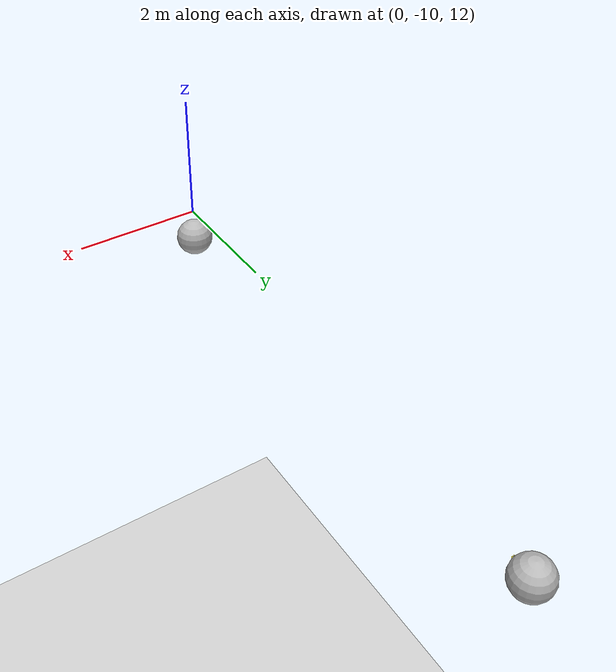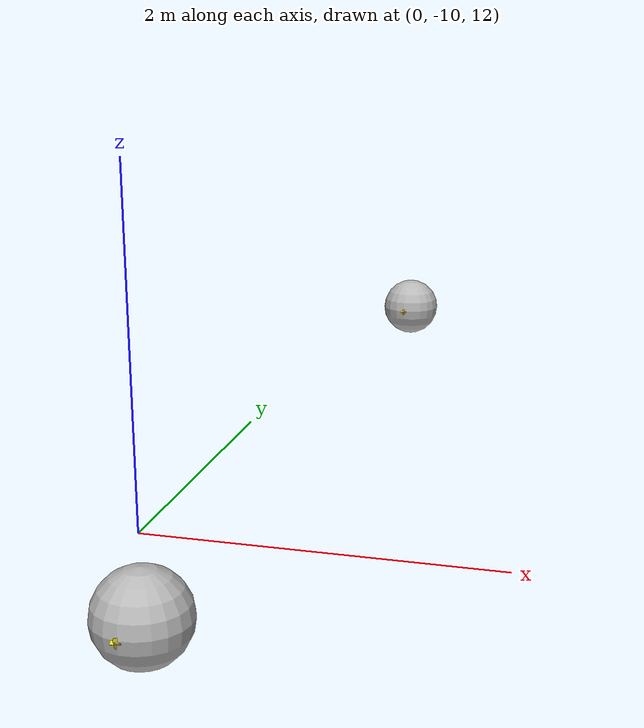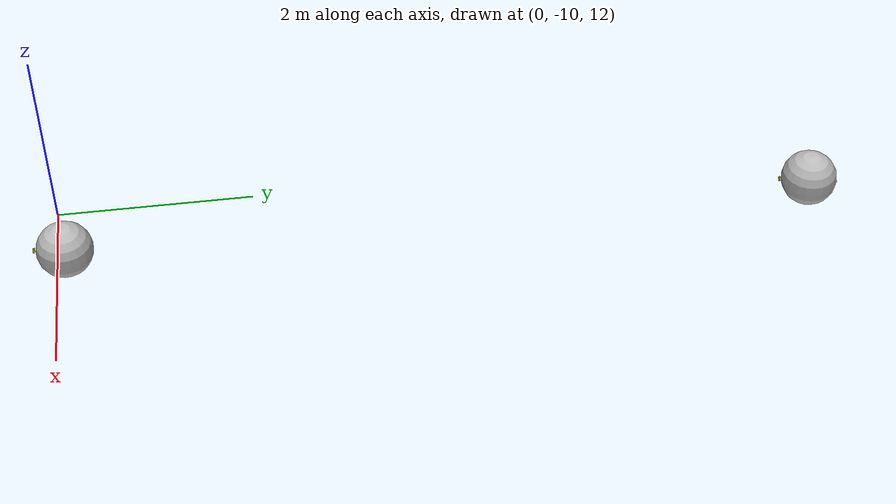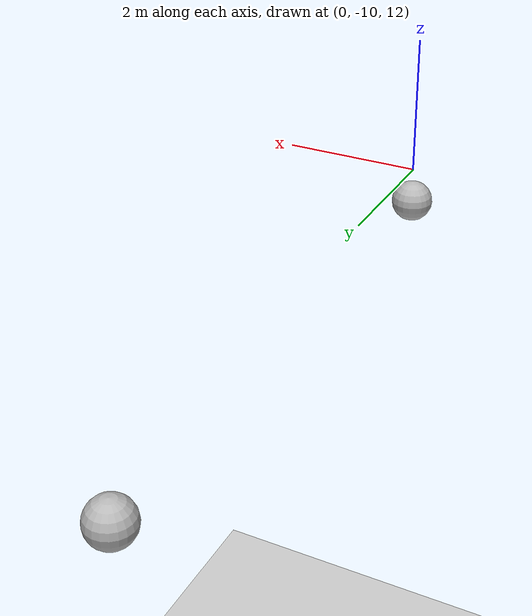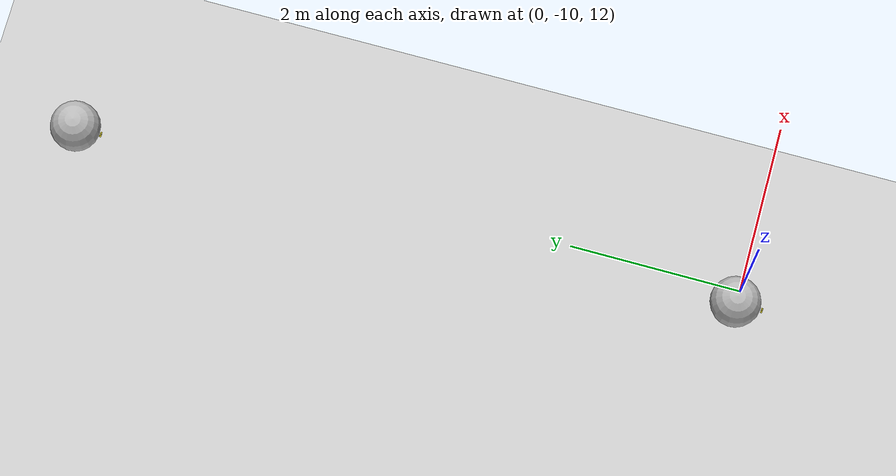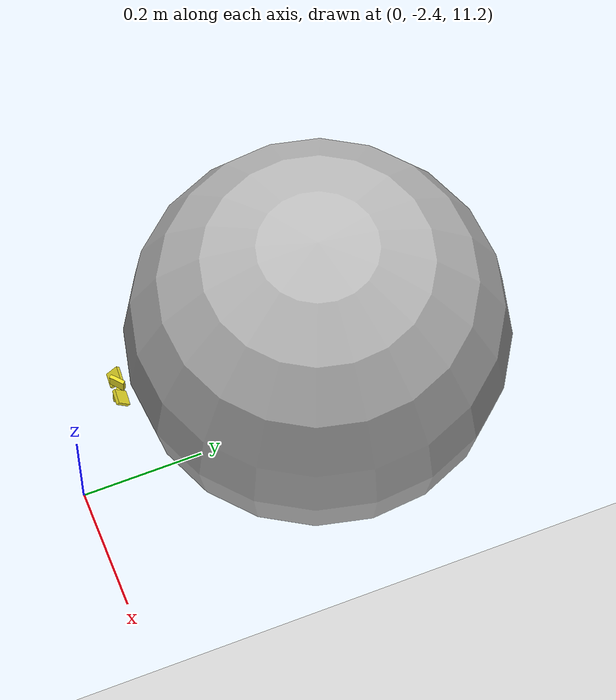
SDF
<sdf version="1.4">
 <world name="default">
  <include><uri>model://ground_plane</uri></include>
  <include><uri>model://sun</uri></include>
  <include><uri>model://UNEXMIN</uri><name>unexmin1</name><pose>0 -2 11.5 0 0 1.5</pose></include>
  <include><uri>model://UNEXMIN</uri><name>unexmin2</name><pose>0 -10 11.5 0 0 1.5</pose></include>
  <plugin name="freefloating_gazebo_fluid" filename="libfreefloating_gazebo_fluid.so">
   <descriptionParam>robot_description</descriptionParam>
   <fluidTopic>current</fluidTopic>
   <alwaysOn>true</alwaysOn>
   <surface>100 100 100</surface>
   <updateRate>.001</updateRate>
  </plugin>
 </world>
</sdf>

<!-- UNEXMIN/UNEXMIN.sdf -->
<sdf version="1.5">

<model name="UNEXMIN">

  <pose>0 0 5.3 0 0 0</pose>

	<link name="body">

    <velocity_decay>
	    <angular>0.001</angular>
	    <linear>0.003</linear>
	  </velocity_decay>

    <inertial>
      <mass>95</mass>
      <pose>0 0 -0.001 0 0 0</pose>
      <inertia> <!-- interias are tricky to compute -->
        <!-- http://answers.gazebosim.org/question/4372/the-inertia-matrix-explained/ -->
        <ixx>3.7814</ixx>       <!-- for a box: ixx = 0.083 * mass * (y*y + z*z) -->
        <ixy>0.0</ixy>         <!-- for a box: ixy = 0 -->
        <ixz>0.0</ixz>         <!-- for a box: ixz = 0 -->
        <iyy>3.7814</iyy>       <!-- for a box: iyy = 0.083 * mass * (x*x + z*z) -->
        <iyz>0.0</iyz>         <!-- for a box: iyz = 0 -->
        <izz>3.7814</izz>       <!-- for a box: izz = 0.083 * mass * (x*x + y*y) -->
      </inertia>
    </inertial>

    <collision name="collision">
      <geometry>
        <sphere>
          <radius>0.3</radius>
        </sphere>
      </geometry>
    </collision>

    <visual name="visual">
      <geometry>
        <sphere>
          <radius>0.3</radius>
        </sphere>
      </geometry>
      <material>
        <script>
          <uri>file://media/materials/scripts/gazebo.material</uri>
          <name>Gazebo/Pedestrian</name>
        </script>
      </material>
    </visual>

    <sensor type="camera" name="camera_UNEXMIN">
	    <pose>0.3 0 0.1 0 0 0</pose>
      <update_rate>30.0</update_rate>
      <camera name="head">
        <horizontal_fov>1.3962634</horizontal_fov>
        <image>
          <width>800</width>
          <height>800</height>
          <format>R8G8B8</format>
        </image>
        <clip>
          <near>0.02</near>
          <far>300</far>
        </clip>
        <noise>
          <type>gaussian</type>
           <!--Noise is sampled independently per pixel on each frame.
               That pixel's noise value is added to each of its color
               channels, which at that point lie in the range [0,1].-->
          <mean>0.0</mean>
          <stddev>0.007</stddev>
        </noise>
      </camera>
      <plugin name="camera_controller" filename="libgazebo_ros_camera.so">
        <alwaysOn>true</alwaysOn>
        <updateRate>0.0</updateRate>
        <cameraName>UNEXMIN/camera</cameraName>
        <imageTopicName>image_raw</imageTopicName>
        <cameraInfoTopicName>camera_info</cameraInfoTopicName>
        <frameName>camera_link</frameName>
        <hackBaseline>0.07</hackBaseline>
        <distortionK1>0.0</distortionK1>
        <distortionK2>0.0</distortionK2>
        <distortionK3>0.0</distortionK3>
        <distortionT1>0.0</distortionT1>
        <distortionT2>0.0</distortionT2>
      </plugin>
    </sensor>

  </link>

  <link name="mass">
    <pose>0 0 -0.1 0 0 0</pose>

    <inertial>
      <mass>10</mass>
      <pose>0 0 0 0 0 0</pose>
      <inertia> <!-- interias are tricky to compute -->
        <!-- http://answers.gazebosim.org/question/4372/the-inertia-matrix-explained/ -->
        <ixx>0.00066</ixx>       <!-- for a box: ixx = 0.083 * mass * (y*y + z*z) -->
        <ixy>0.0</ixy>         <!-- for a box: ixy = 0 -->
        <ixz>0.0</ixz>         <!-- for a box: ixz = 0 -->
        <iyy>0.00066</iyy>       <!-- for a box: iyy = 0.083 * mass * (x*x + z*z) -->
        <iyz>0.0</iyz>         <!-- for a box: iyz = 0 -->
        <izz>0.00066</izz>       <!-- for a box: izz = 0.083 * mass * (x*x + y*y) -->
      </inertia>
    </inertial>

    <collision name="collision">
      <geometry>
        <sphere>
          <radius>0.01</radius>
        </sphere>
      </geometry>
    </collision>

    <visual name="visual">
      <geometry>
        <sphere>
          <radius>0.01</radius>
        </sphere>
      </geometry>
	    <material>
        <script>
          <uri>file://media/materials/scripts/gazebo.material</uri>
          <name>Gazebo/Yellow</name>
        </script>
      </material>
    </visual>
  </link>

    <joint name="sphere_joint" type="revolute">
      <pose>0 0 0.1 0 0 0</pose>
      <child>mass</child>
      <parent>body</parent>
      <axis>
        <xyz>0 1 0</xyz>

      	<dynamics>
		      <damping>1</damping>
      	</dynamics>

      </axis>
    </joint>

<include>
      <uri>model://hokuyo_UNEXMIN</uri>
      <pose>0.32 0 0 0 0 0</pose>
    </include>

    <joint name="hokuyo_joint" type="fixed">
	<pose>0 0 0 0 0 0</pose>
      <child>hokuyo_UNEXMIN::link</child>
      <parent>body</parent>
      <axis>
        <xyz>0 1 0</xyz>

        <limit>

          <lower>-0.77</lower>
          <upper>0.77</upper>

        </limit>

      </axis>
    </joint>

    <include>
      <uri>model://propeller_center_UNEXMIN</uri>
      <pose>-0.32 0 0 0 0 0</pose>

    </include>

<joint name='spinning_joint' type='revolute'>
      <parent>body</parent>
      <child>propeller_center_UNEXMIN::propeller</child>
      <axis>
        <xyz>-1 0 0</xyz>
        <use_parent_model_frame>1</use_parent_model_frame>
        <limit>
          <lower>-1e+12</lower>
          <upper>1e+12</upper>
          <effort>-1</effort>
          <velocity>-1</velocity>
        </limit>
	      <dynamics>
		      <damping>0.6</damping>
      	</dynamics>
      </axis>

    </joint>

<allow_auto_disable>1</allow_auto_disable>

<plugin name="BuoyancyPlugin" filename="libBuoyancyPlugin.so">
    <!-- a viscous liquid -->
    <fluid_density>943.6864375</fluid_density>
    <link name="body">
      <volume>2916</volume>
    </link>
  </plugin>

</model>

</sdf>

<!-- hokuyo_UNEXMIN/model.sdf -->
<sdf version="1.5">
  <model name="hokuyo_UNEXMIN">
    <pose>0 0 0.035 0 0 0</pose>
    <link name="link">
      <inertial>
        <mass>1.0</mass>
	      <inertia> <!-- interias are tricky to compute -->
          <!-- http://answers.gazebosim.org/question/4372/the-inertia-matrix-explained/ -->
          <ixx>0.000415</ixx>       <!-- for a box: ixx = 0.083 * mass * (y*y + z*z) -->
          <ixy>0.0</ixy>         <!-- for a box: ixy = 0 -->
          <ixz>0.0</ixz>         <!-- for a box: ixz = 0 -->
          <iyy>0.000415</iyy>       <!-- for a box: iyy = 0.083 * mass * (x*x + z*z) -->
          <iyz>0.0</iyz>         <!-- for a box: iyz = 0 -->
          <izz>0.000415</izz>       <!-- for a box: izz = 0.083 * mass * (x*x + y*y) -->
        </inertia>
      </inertial>

      <collision name="collision-base">
        <pose>0 0 -0.0145 0 0 0</pose>
        <geometry>
          <box>
            <size>0.05 0.05 0.041</size>
          </box>
        </geometry>
      </collision>
      <collision name="collision-top">
        <pose>0 0 0.0205 0 0 0</pose>
        <geometry>
          <cylinder>
            <radius>0.021</radius>
            <length>0.029</length>
          </cylinder>
        </geometry>
      </collision>
      <sensor name="laser" type="ray">
        <pose>0.0 0 0.0 0 -0 0</pose>
       <ray>
          <scan>
            <horizontal>
              <samples>200</samples>
              <resolution>1</resolution>
              <min_angle>-0.5</min_angle>
              <max_angle>0.5</max_angle>
            </horizontal>
            <vertical>
              <samples>200</samples>
              <resolution>1.0</resolution>
              <min_angle>-0.7</min_angle>
              <max_angle>0.7</max_angle>
            </vertical>
          </scan>
          <range>
            <min>0.08</min>
            <max>3.0</max>
            <resolution>0.01</resolution>
          </range>
        </ray>
        <plugin name="gazebo_ros_head_hokuyo_controller" filename="libgazebo_ros_block_laser.so">
        	<topicName>/UNEXMIN/laser/scan</topicName>
        	<frameName>base_link</frameName>
                    <gaussianNoise>0.00</gaussianNoise>
          		<updateRate>40</updateRate>
      	</plugin>

        <always_on>1</always_on>
        <update_rate>40</update_rate>
        <visualize>true</visualize>
      </sensor>
    </link>
  </model>
</sdf>

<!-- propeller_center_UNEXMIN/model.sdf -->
<sdf version="1.5">
  <model name="propeller_center_UNEXMIN">
    <pose>-0.32 0 0 0 0 0</pose>
    <link name="propeller">
      <inertial>
        <mass>0.998</mass>
        <pose>0 0 0 0 0 0</pose>
        <inertia> <!-- interias are tricky to compute -->
          <!-- http://answers.gazebosim.org/question/4372/the-inertia-matrix-explained/ -->
          <ixx>0.000415</ixx>       <!-- for a box: ixx = 0.083 * mass * (y*y + z*z) -->
          <ixy>0.0</ixy>         <!-- for a box: ixy = 0 -->
          <ixz>0.0</ixz>         <!-- for a box: ixz = 0 -->
          <iyy>0.000415</iyy>       <!-- for a box: iyy = 0.083 * mass * (x*x + z*z) -->
          <iyz>0.0</iyz>         <!-- for a box: iyz = 0 -->
          <izz>0.000415</izz>       <!-- for a box: izz = 0.083 * mass * (x*x + y*y) -->
        </inertia>
      </inertial>
      <collision name="collision">
          <geometry>
              <box>
                <size>0.05 0.05 0.05</size>
              </box>
        </geometry>

      </collision>

<visual name="blade1_visual">
		<pose>0 -0.018 0 0 0.7853981633974483 0</pose>
        	<geometry>
              <box>
                <size>0.024 0.024 0.006</size>
              </box>
        </geometry>
	  <material>
            <script>
              <uri>file://media/materials/scripts/gazebo.material</uri>
              <name>Gazebo/Yellow</name>
            </script>
          </material>
      </visual>
	<collision name="blade1_collision">
          <pose>0 -0.018 0 0 0.7853981633974483 0</pose>
            <geometry>
              <box>
                <size>0.024 0.024 0.006</size>
              </box>
            </geometry>
        </collision>
<visual name="blade2_visual">
		<pose>0 0.018 0 0 -0.7853981633974483 0</pose>
        	<geometry>
              <box>
                <size>0.024 0.024 0.006</size>
              </box>
        </geometry>
	  <material>
            <script>
              <uri>file://media/materials/scripts/gazebo.material</uri>
              <name>Gazebo/Yellow</name>
            </script>
          </material>
      </visual>
<collision name="blade2_collision">
          <pose>0 0.018 0 0 -0.7853981633974483 0</pose>
            <geometry>
              <box>
                <size>0.024 0.024 0.006</size>
              </box>
            </geometry>
        </collision>
<visual name="blade3_visual">
		<pose>0 0 -0.018 1.5707963267948966 0 0.7853981633974483</pose>
        	<geometry>
              <box>
                <size>0.024 0.024 0.006</size>
              </box>
        </geometry>
	  <material>
            <script>
              <uri>file://media/materials/scripts/gazebo.material</uri>
              <name>Gazebo/Yellow</name>
            </script>
          </material>
      </visual>
<collision name="blade3_collision">
          <pose>0 0 -0.018 1.5707963267948966 0 0.7853981633974483</pose>
            <geometry>
              <box>
                <size>0.024 0.024 0.006</size>
              </box>
            </geometry>
        </collision>
<visual name="blade4_visual">
		<pose>0 0 0.018 1.5707963267948966 0 -0.7853981633974483</pose>
        	<geometry>
              <box>
                <size>0.024 0.024 0.006</size>
              </box>
        </geometry>
	  <material>
            <script>
              <uri>file://media/materials/scripts/gazebo.material</uri>
              <name>Gazebo/Yellow</name>
            </script>
          </material>
      </visual>
<collision name="blade4_collision">
          <pose>0 0 0.018 1.5707963267948966 0 -0.7853981633974483</pose>
            <geometry>
              <box>
                <size>0.024 0.024 0.006</size>
              </box>
            </geometry>
        </collision>
  </link>

<plugin name="submarine_propeller_1" filename="libLiftDragPlugin.so">
	      	<air_density>943.70975</air_density>
		<cla>1.2535816618911175</cla>
		<cla_stall>-1.4326647564469914</cla_stall>
		<cda>0</cda>
		<cda_stall>1.4326647564469914</cda_stall>
		<alpha_stall>1.396</alpha_stall>
		<a0>0</a0>
	      	<area>0.000576</area>
	      	<upward>-0.7071067811865476 0 0.7071067811865475</upward>
	      	<forward>0.7071067811865475 0 0.7071067811865476</forward>
		<link_name>propeller</link_name>
	      	<cp>0 -0.018 0</cp>
	</plugin>

    	<plugin name="submarine_propeller_2" filename="libLiftDragPlugin.so">
      		<air_density>943.70975</air_density>
		<cla>1.2535816618911175</cla>
		<cla_stall>-1.4326647564469914</cla_stall>
		<cda>0</cda>
		<cda_stall>1.4326647564469914</cda_stall>
		<alpha_stall>1.396</alpha_stall>
		<a0>0</a0>
      		<area>0.000576</area>
      		<upward>0.7071067811865475 0 0.7071067811865476</upward>
      		<forward>0.7071067811865476 0 -0.7071067811865475</forward>
      		<link_name>propeller</link_name>
      		<cp>0 0.018 0</cp>
    	</plugin>

    	<plugin name="submarine_propeller_3" filename="libLiftDragPlugin.so">
      		<air_density>943.70975</air_density>
		<cla>1.2535816618911175</cla>
		<cla_stall>-1.4326647564469914</cla_stall>
		<cda>0</cda>
		<cda_stall>1.4326647564469914</cda_stall>
		<alpha_stall>1.396</alpha_stall>
		<a0>0</a0>
      		<area>0.000576</area>
      		<upward>-0.7071067811865475 -0.7071067811865475 0</upward>
      		<forward>0.7071067811865475 -0.7071067811865476 0</forward>
      		<link_name>propeller</link_name>
      		<cp>0 0 -0.018</cp>
    	</plugin>

    	<plugin name="submarine_propeller_4" filename="libLiftDragPlugin.so">
      		<air_density>943.70975</air_density>
		<cla>1.2535816618911175</cla>
		<cla_stall>-1.4326647564469914</cla_stall>
		<cda>0</cda>
		<cda_stall>1.4326647564469914</cda_stall>
		<alpha_stall>1.396</alpha_stall>
		<a0>0</a0>
      		<area>0.000576</area>
      		<upward>-0.7071067811865476 0.7071067811865475 0</upward>
      		<forward>0.7071067811865475 0.7071067811865475 0</forward>
      		<link_name>propeller</link_name>
      		<cp>0 0 0.018</cp>
    	</plugin>

  </model>
</sdf>
